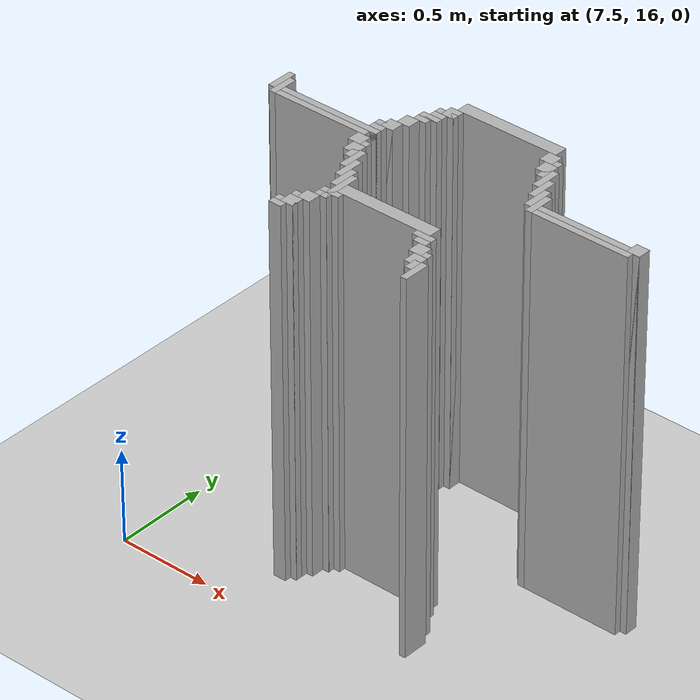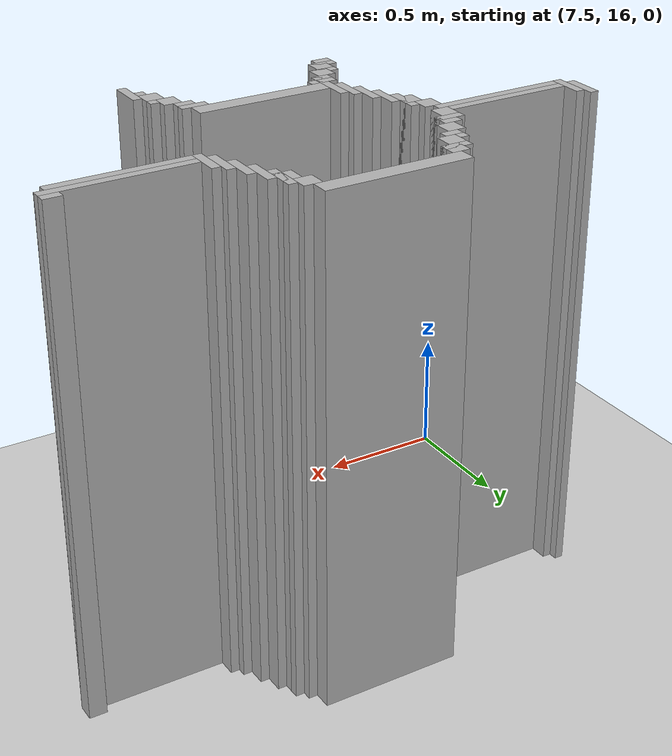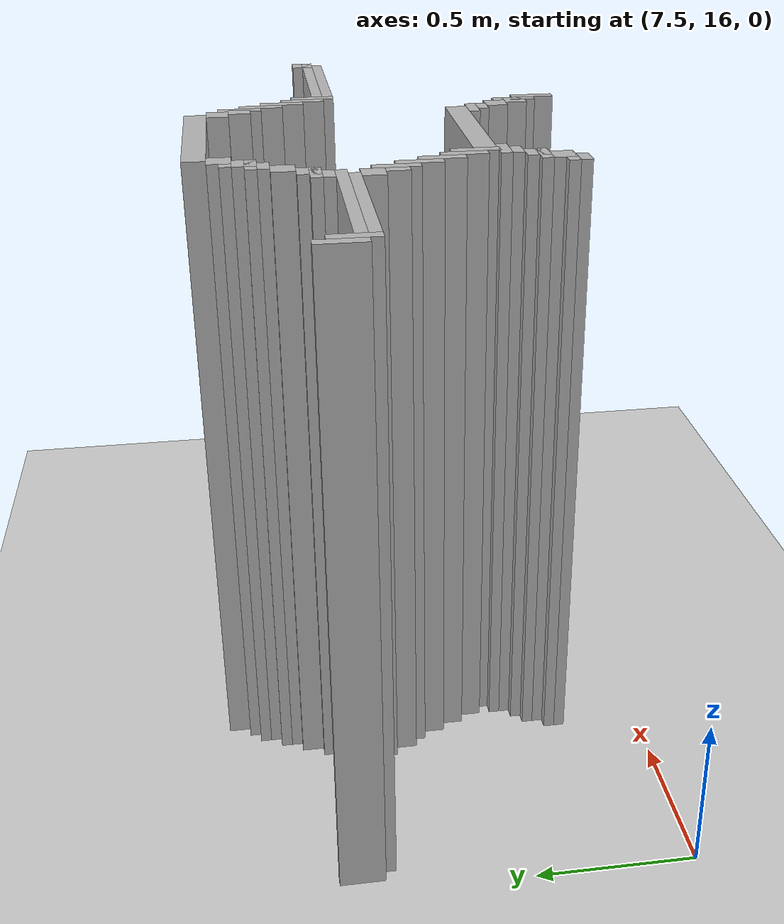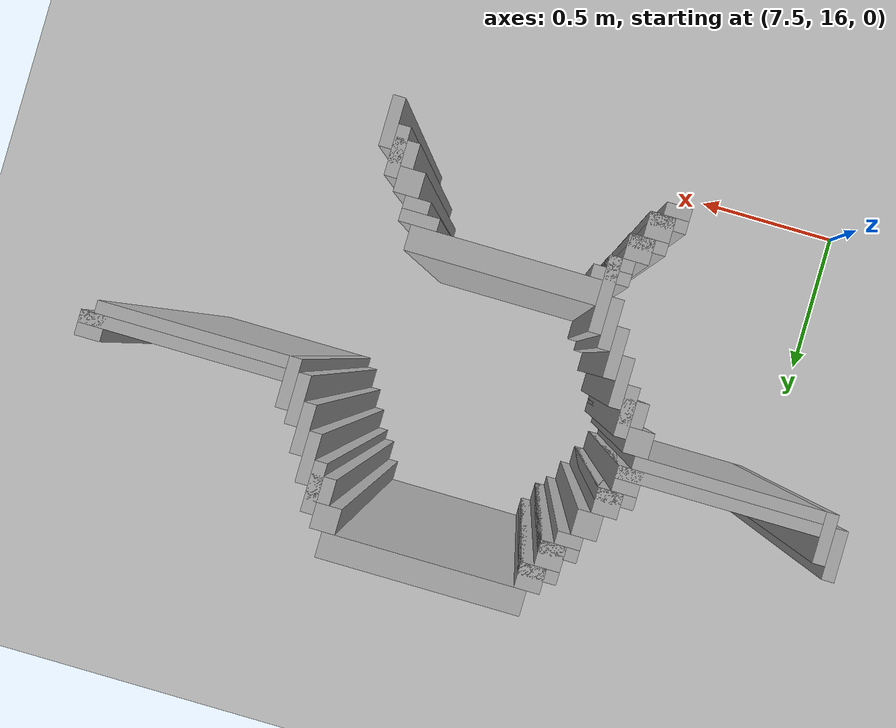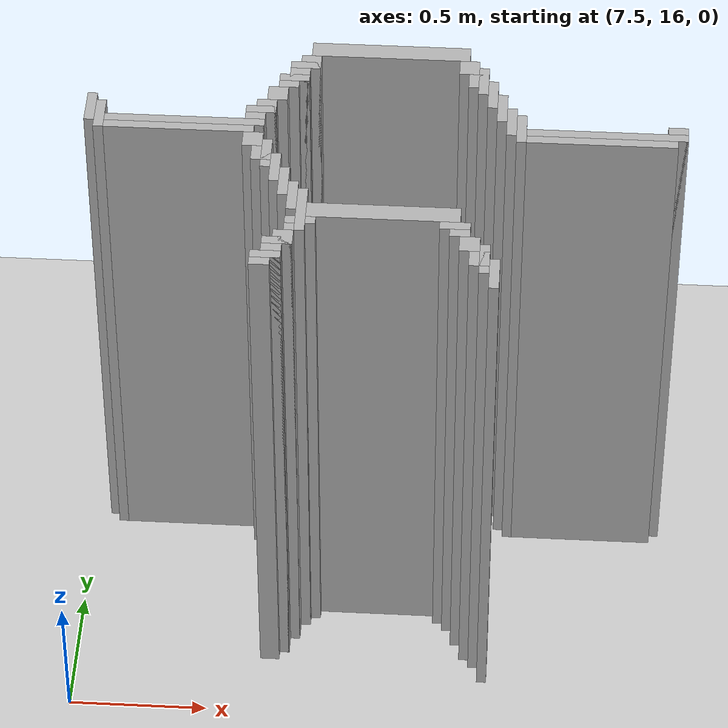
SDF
<sdf version="1.6">
 <world name="slam_world">
  <model name="ground_plane">
   <static>true</static>
   <link name="link">
    <collision name="collision">
     <geometry><plane><normal>0 0 1</normal><size>100 100</size></plane></geometry>
    </collision>
    <visual name="visual">
     <geometry><plane><normal>0 0 1</normal><size>100 100</size></plane></geometry>
     <material>
      <ambient>0.8 0.8 0.8 1</ambient>
      <diffuse>0.8 0.8 0.8 1</diffuse>
      <specular>0.8 0.8 0.8 1</specular>
     </material>
    </visual>
   </link>
  </model>
  <model name="wall_6">
   <static>true</static>
   <pose>8.596287703016241 17.366589327146173 1.0 0 0 0</pose>
   <link name="link">
    <collision name="collision">
     <geometry><box><size>0.5568445475638051 0.06960556844547564 2.0</size></box></geometry>
    </collision>
    <visual name="visual">
     <geometry><box><size>0.5568445475638051 0.06960556844547564 2.0</size></box></geometry>
     <material><ambient>0.5 0.5 0.5 1</ambient><diffuse>0.7 0.7 0.7 1</diffuse></material>
    </visual>
   </link>
  </model>
  <model name="wall_21">
   <static>true</static>
   <pose>8.317865429234338 17.296983758700694 1.0 0 0 0</pose>
   <link name="link">
    <collision name="collision">
     <geometry><box><size>0.06960556844547564 0.06960556844547564 2.0</size></box></geometry>
    </collision>
    <visual name="visual">
     <geometry><box><size>0.06960556844547564 0.06960556844547564 2.0</size></box></geometry>
     <material><ambient>0.5 0.5 0.5 1</ambient><diffuse>0.7 0.7 0.7 1</diffuse></material>
    </visual>
   </link>
  </model>
  <model name="wall_22">
   <static>true</static>
   <pose>8.874709976798144 17.296983758700694 1.0 0 0 0</pose>
   <link name="link">
    <collision name="collision">
     <geometry><box><size>0.06960556844547564 0.06960556844547564 2.0</size></box></geometry>
    </collision>
    <visual name="visual">
     <geometry><box><size>0.06960556844547564 0.06960556844547564 2.0</size></box></geometry>
     <material><ambient>0.5 0.5 0.5 1</ambient><diffuse>0.7 0.7 0.7 1</diffuse></material>
    </visual>
   </link>
  </model>
  <model name="wall_41">
   <static>true</static>
   <pose>8.30046403712297 17.279582366589327 1.0 0 0 0</pose>
   <link name="link">
    <collision name="collision">
     <geometry><box><size>0.10440835266821345 0.03480278422273782 2.0</size></box></geometry>
    </collision>
    <visual name="visual">
     <geometry><box><size>0.10440835266821345 0.03480278422273782 2.0</size></box></geometry>
     <material><ambient>0.5 0.5 0.5 1</ambient><diffuse>0.7 0.7 0.7 1</diffuse></material>
    </visual>
   </link>
  </model>
  <model name="wall_42">
   <static>true</static>
   <pose>8.92691415313225 17.22737819025522 1.0 0 0 0</pose>
   <link name="link">
    <collision name="collision">
     <geometry><box><size>0.03480278422273782 0.13921113689095127 2.0</size></box></geometry>
    </collision>
    <visual name="visual">
     <geometry><box><size>0.03480278422273782 0.13921113689095127 2.0</size></box></geometry>
     <material><ambient>0.5 0.5 0.5 1</ambient><diffuse>0.7 0.7 0.7 1</diffuse></material>
    </visual>
   </link>
  </model>
  <model name="wall_61">
   <static>true</static>
   <pose>8.2830626450116 17.22737819025522 1.0 0 0 0</pose>
   <link name="link">
    <collision name="collision">
     <geometry><box><size>0.06960556844547564 0.06960556844547564 2.0</size></box></geometry>
    </collision>
    <visual name="visual">
     <geometry><box><size>0.06960556844547564 0.06960556844547564 2.0</size></box></geometry>
     <material><ambient>0.5 0.5 0.5 1</ambient><diffuse>0.7 0.7 0.7 1</diffuse></material>
    </visual>
   </link>
  </model>
  <model name="wall_62">
   <static>true</static>
   <pose>8.909512761020881 17.22737819025522 1.0 0 0 0</pose>
   <link name="link">
    <collision name="collision">
     <geometry><box><size>0.06960556844547564 0.06960556844547564 2.0</size></box></geometry>
    </collision>
    <visual name="visual">
     <geometry><box><size>0.06960556844547564 0.06960556844547564 2.0</size></box></geometry>
     <material><ambient>0.5 0.5 0.5 1</ambient><diffuse>0.7 0.7 0.7 1</diffuse></material>
    </visual>
   </link>
  </model>
  <model name="wall_81">
   <static>true</static>
   <pose>8.265661252900232 17.209976798143853 1.0 0 0 0</pose>
   <link name="link">
    <collision name="collision">
     <geometry><box><size>0.10440835266821345 0.03480278422273782 2.0</size></box></geometry>
    </collision>
    <visual name="visual">
     <geometry><box><size>0.10440835266821345 0.03480278422273782 2.0</size></box></geometry>
     <material><ambient>0.5 0.5 0.5 1</ambient><diffuse>0.7 0.7 0.7 1</diffuse></material>
    </visual>
   </link>
  </model>
  <model name="wall_82">
   <static>true</static>
   <pose>8.961716937354987 17.157772621809745 1.0 0 0 0</pose>
   <link name="link">
    <collision name="collision">
     <geometry><box><size>0.03480278422273782 0.13921113689095127 2.0</size></box></geometry>
    </collision>
    <visual name="visual">
     <geometry><box><size>0.03480278422273782 0.13921113689095127 2.0</size></box></geometry>
     <material><ambient>0.5 0.5 0.5 1</ambient><diffuse>0.7 0.7 0.7 1</diffuse></material>
    </visual>
   </link>
  </model>
  <model name="wall_96">
   <static>true</static>
   <pose>8.248259860788863 17.17517401392111 1.0 0 0 0</pose>
   <link name="link">
    <collision name="collision">
     <geometry><box><size>0.06960556844547564 0.03480278422273782 2.0</size></box></geometry>
    </collision>
    <visual name="visual">
     <geometry><box><size>0.06960556844547564 0.03480278422273782 2.0</size></box></geometry>
     <material><ambient>0.5 0.5 0.5 1</ambient><diffuse>0.7 0.7 0.7 1</diffuse></material>
    </visual>
   </link>
  </model>
  <model name="wall_111">
   <static>true</static>
   <pose>8.213457076566124 17.122969837587007 1.0 0 0 0</pose>
   <link name="link">
    <collision name="collision">
     <geometry><box><size>0.06960556844547564 0.06960556844547564 2.0</size></box></geometry>
    </collision>
    <visual name="visual">
     <geometry><box><size>0.06960556844547564 0.06960556844547564 2.0</size></box></geometry>
     <material><ambient>0.5 0.5 0.5 1</ambient><diffuse>0.7 0.7 0.7 1</diffuse></material>
    </visual>
   </link>
  </model>
  <model name="wall_112">
   <static>true</static>
   <pose>8.996519721577727 17.08816705336427 1.0 0 0 0</pose>
   <link name="link">
    <collision name="collision">
     <geometry><box><size>0.03480278422273782 0.13921113689095127 2.0</size></box></geometry>
    </collision>
    <visual name="visual">
     <geometry><box><size>0.03480278422273782 0.13921113689095127 2.0</size></box></geometry>
     <material><ambient>0.5 0.5 0.5 1</ambient><diffuse>0.7 0.7 0.7 1</diffuse></material>
    </visual>
   </link>
  </model>
  <model name="wall_130">
   <static>true</static>
   <pose>7.569605568445476 17.01856148491879 1.0 0 0 0</pose>
   <link name="link">
    <collision name="collision">
     <geometry><box><size>0.03480278422273782 0.13921113689095127 2.0</size></box></geometry>
    </collision>
    <visual name="visual">
     <geometry><box><size>0.03480278422273782 0.13921113689095127 2.0</size></box></geometry>
     <material><ambient>0.5 0.5 0.5 1</ambient><diffuse>0.7 0.7 0.7 1</diffuse></material>
    </visual>
   </link>
  </model>
  <model name="wall_131">
   <static>true</static>
   <pose>8.178654292343387 17.053364269141532 1.0 0 0 0</pose>
   <link name="link">
    <collision name="collision">
     <geometry><box><size>0.06960556844547564 0.06960556844547564 2.0</size></box></geometry>
    </collision>
    <visual name="visual">
     <geometry><box><size>0.06960556844547564 0.06960556844547564 2.0</size></box></geometry>
     <material><ambient>0.5 0.5 0.5 1</ambient><diffuse>0.7 0.7 0.7 1</diffuse></material>
    </visual>
   </link>
  </model>
  <model name="wall_132">
   <static>true</static>
   <pose>9.031322505800464 17.01856148491879 1.0 0 0 0</pose>
   <link name="link">
    <collision name="collision">
     <geometry><box><size>0.03480278422273782 0.13921113689095127 2.0</size></box></geometry>
    </collision>
    <visual name="visual">
     <geometry><box><size>0.03480278422273782 0.13921113689095127 2.0</size></box></geometry>
     <material><ambient>0.5 0.5 0.5 1</ambient><diffuse>0.7 0.7 0.7 1</diffuse></material>
    </visual>
   </link>
  </model>
  <model name="wall_150">
   <static>true</static>
   <pose>7.604408352668213 16.983758700696054 1.0 0 0 0</pose>
   <link name="link">
    <collision name="collision">
     <geometry><box><size>0.03480278422273782 0.13921113689095127 2.0</size></box></geometry>
    </collision>
    <visual name="visual">
     <geometry><box><size>0.03480278422273782 0.13921113689095127 2.0</size></box></geometry>
     <material><ambient>0.5 0.5 0.5 1</ambient><diffuse>0.7 0.7 0.7 1</diffuse></material>
    </visual>
   </link>
  </model>
  <model name="wall_151">
   <static>true</static>
   <pose>8.161252900232018 17.035962877030162 1.0 0 0 0</pose>
   <link name="link">
    <collision name="collision">
     <geometry><box><size>0.10440835266821345 0.03480278422273782 2.0</size></box></geometry>
    </collision>
    <visual name="visual">
     <geometry><box><size>0.10440835266821345 0.03480278422273782 2.0</size></box></geometry>
     <material><ambient>0.5 0.5 0.5 1</ambient><diffuse>0.7 0.7 0.7 1</diffuse></material>
    </visual>
   </link>
  </model>
  <model name="wall_152">
   <static>true</static>
   <pose>9.066125290023201 16.983758700696054 1.0 0 0 0</pose>
   <link name="link">
    <collision name="collision">
     <geometry><box><size>0.03480278422273782 0.13921113689095127 2.0</size></box></geometry>
    </collision>
    <visual name="visual">
     <geometry><box><size>0.03480278422273782 0.13921113689095127 2.0</size></box></geometry>
     <material><ambient>0.5 0.5 0.5 1</ambient><diffuse>0.7 0.7 0.7 1</diffuse></material>
    </visual>
   </link>
  </model>
  <model name="wall_166">
   <static>true</static>
   <pose>8.14385150812065 16.983758700696054 1.0 0 0 0</pose>
   <link name="link">
    <collision name="collision">
     <geometry><box><size>0.06960556844547564 0.06960556844547564 2.0</size></box></geometry>
    </collision>
    <visual name="visual">
     <geometry><box><size>0.06960556844547564 0.06960556844547564 2.0</size></box></geometry>
     <material><ambient>0.5 0.5 0.5 1</ambient><diffuse>0.7 0.7 0.7 1</diffuse></material>
    </visual>
   </link>
  </model>
  <model name="wall_167">
   <static>true</static>
   <pose>9.605568445475638 16.983758700696054 1.0 0 0 0</pose>
   <link name="link">
    <collision name="collision">
     <geometry><box><size>0.06960556844547564 0.06960556844547564 2.0</size></box></geometry>
    </collision>
    <visual name="visual">
     <geometry><box><size>0.06960556844547564 0.06960556844547564 2.0</size></box></geometry>
     <material><ambient>0.5 0.5 0.5 1</ambient><diffuse>0.7 0.7 0.7 1</diffuse></material>
    </visual>
   </link>
  </model>
  <model name="wall_176">
   <static>true</static>
   <pose>7.900232018561485 16.966357308584687 1.0 0 0 0</pose>
   <link name="link">
    <collision name="collision">
     <geometry><box><size>0.5568445475638051 0.03480278422273782 2.0</size></box></geometry>
    </collision>
    <visual name="visual">
     <geometry><box><size>0.5568445475638051 0.03480278422273782 2.0</size></box></geometry>
     <material><ambient>0.5 0.5 0.5 1</ambient><diffuse>0.7 0.7 0.7 1</diffuse></material>
    </visual>
   </link>
  </model>
  <model name="wall_177">
   <static>true</static>
   <pose>9.361948955916473 16.966357308584687 1.0 0 0 0</pose>
   <link name="link">
    <collision name="collision">
     <geometry><box><size>0.5568445475638051 0.03480278422273782 2.0</size></box></geometry>
    </collision>
    <visual name="visual">
     <geometry><box><size>0.5568445475638051 0.03480278422273782 2.0</size></box></geometry>
     <material><ambient>0.5 0.5 0.5 1</ambient><diffuse>0.7 0.7 0.7 1</diffuse></material>
    </visual>
   </link>
  </model>
  <model name="wall_187">
   <static>true</static>
   <pose>7.882830626450116 16.93155452436195 1.0 0 0 0</pose>
   <link name="link">
    <collision name="collision">
     <geometry><box><size>0.5220417633410672 0.03480278422273782 2.0</size></box></geometry>
    </collision>
    <visual name="visual">
     <geometry><box><size>0.5220417633410672 0.03480278422273782 2.0</size></box></geometry>
     <material><ambient>0.5 0.5 0.5 1</ambient><diffuse>0.7 0.7 0.7 1</diffuse></material>
    </visual>
   </link>
  </model>
  <model name="wall_188">
   <static>true</static>
   <pose>9.344547563805104 16.93155452436195 1.0 0 0 0</pose>
   <link name="link">
    <collision name="collision">
     <geometry><box><size>0.5220417633410672 0.03480278422273782 2.0</size></box></geometry>
    </collision>
    <visual name="visual">
     <geometry><box><size>0.5220417633410672 0.03480278422273782 2.0</size></box></geometry>
     <material><ambient>0.5 0.5 0.5 1</ambient><diffuse>0.7 0.7 0.7 1</diffuse></material>
    </visual>
   </link>
  </model>
  <model name="wall_197">
   <static>true</static>
   <pose>8.14385150812065 16.87935034802784 1.0 0 0 0</pose>
   <link name="link">
    <collision name="collision">
     <geometry><box><size>0.06960556844547564 0.06960556844547564 2.0</size></box></geometry>
    </collision>
    <visual name="visual">
     <geometry><box><size>0.06960556844547564 0.06960556844547564 2.0</size></box></geometry>
     <material><ambient>0.5 0.5 0.5 1</ambient><diffuse>0.7 0.7 0.7 1</diffuse></material>
    </visual>
   </link>
  </model>
  <model name="wall_206">
   <static>true</static>
   <pose>8.196055684454755 16.809744779582367 1.0 0 0 0</pose>
   <link name="link">
    <collision name="collision">
     <geometry><box><size>0.03480278422273782 0.13921113689095127 2.0</size></box></geometry>
    </collision>
    <visual name="visual">
     <geometry><box><size>0.03480278422273782 0.13921113689095127 2.0</size></box></geometry>
     <material><ambient>0.5 0.5 0.5 1</ambient><diffuse>0.7 0.7 0.7 1</diffuse></material>
    </visual>
   </link>
  </model>
  <model name="wall_215">
   <static>true</static>
   <pose>8.178654292343387 16.809744779582367 1.0 0 0 0</pose>
   <link name="link">
    <collision name="collision">
     <geometry><box><size>0.06960556844547564 0.06960556844547564 2.0</size></box></geometry>
    </collision>
    <visual name="visual">
     <geometry><box><size>0.06960556844547564 0.06960556844547564 2.0</size></box></geometry>
     <material><ambient>0.5 0.5 0.5 1</ambient><diffuse>0.7 0.7 0.7 1</diffuse></material>
    </visual>
   </link>
  </model>
  <model name="wall_224">
   <static>true</static>
   <pose>8.230858468677495 16.74013921113689 1.0 0 0 0</pose>
   <link name="link">
    <collision name="collision">
     <geometry><box><size>0.03480278422273782 0.13921113689095127 2.0</size></box></geometry>
    </collision>
    <visual name="visual">
     <geometry><box><size>0.03480278422273782 0.13921113689095127 2.0</size></box></geometry>
     <material><ambient>0.5 0.5 0.5 1</ambient><diffuse>0.7 0.7 0.7 1</diffuse></material>
    </visual>
   </link>
  </model>
  <model name="wall_237">
   <static>true</static>
   <pose>8.265661252900232 16.670533642691414 1.0 0 0 0</pose>
   <link name="link">
    <collision name="collision">
     <geometry><box><size>0.03480278422273782 0.13921113689095127 2.0</size></box></geometry>
    </collision>
    <visual name="visual">
     <geometry><box><size>0.03480278422273782 0.13921113689095127 2.0</size></box></geometry>
     <material><ambient>0.5 0.5 0.5 1</ambient><diffuse>0.7 0.7 0.7 1</diffuse></material>
    </visual>
   </link>
  </model>
  <model name="wall_246">
   <static>true</static>
   <pose>8.30046403712297 16.60092807424594 1.0 0 0 0</pose>
   <link name="link">
    <collision name="collision">
     <geometry><box><size>0.03480278422273782 0.13921113689095127 2.0</size></box></geometry>
    </collision>
    <visual name="visual">
     <geometry><box><size>0.03480278422273782 0.13921113689095127 2.0</size></box></geometry>
     <material><ambient>0.5 0.5 0.5 1</ambient><diffuse>0.7 0.7 0.7 1</diffuse></material>
    </visual>
   </link>
  </model>
  <model name="wall_255">
   <static>true</static>
   <pose>8.335266821345707 16.531322505800464 1.0 0 0 0</pose>
   <link name="link">
    <collision name="collision">
     <geometry><box><size>0.03480278422273782 0.2088167053364269 2.0</size></box></geometry>
    </collision>
    <visual name="visual">
     <geometry><box><size>0.03480278422273782 0.2088167053364269 2.0</size></box></geometry>
     <material><ambient>0.5 0.5 0.5 1</ambient><diffuse>0.7 0.7 0.7 1</diffuse></material>
    </visual>
   </link>
  </model>
  <model name="wall_270">
   <static>true</static>
   <pose>8.61368909512761 16.531322505800464 1.0 0 0 0</pose>
   <link name="link">
    <collision name="collision">
     <geometry><box><size>0.5220417633410672 0.06960556844547564 2.0</size></box></geometry>
    </collision>
    <visual name="visual">
     <geometry><box><size>0.5220417633410672 0.06960556844547564 2.0</size></box></geometry>
     <material><ambient>0.5 0.5 0.5 1</ambient><diffuse>0.7 0.7 0.7 1</diffuse></material>
    </visual>
   </link>
  </model>
  <model name="wall_287">
   <static>true</static>
   <pose>8.335266821345707 16.479118329466356 1.0 0 0 0</pose>
   <link name="link">
    <collision name="collision">
     <geometry><box><size>0.10440835266821345 0.03480278422273782 2.0</size></box></geometry>
    </collision>
    <visual name="visual">
     <geometry><box><size>0.10440835266821345 0.03480278422273782 2.0</size></box></geometry>
     <material><ambient>0.5 0.5 0.5 1</ambient><diffuse>0.7 0.7 0.7 1</diffuse></material>
    </visual>
   </link>
  </model>
  <model name="wall_288">
   <static>true</static>
   <pose>8.857308584686775 16.479118329466356 1.0 0 0 0</pose>
   <link name="link">
    <collision name="collision">
     <geometry><box><size>0.10440835266821345 0.03480278422273782 2.0</size></box></geometry>
    </collision>
    <visual name="visual">
     <geometry><box><size>0.10440835266821345 0.03480278422273782 2.0</size></box></geometry>
     <material><ambient>0.5 0.5 0.5 1</ambient><diffuse>0.7 0.7 0.7 1</diffuse></material>
    </visual>
   </link>
  </model>
  <model name="wall_298">
   <static>true</static>
   <pose>8.317865429234338 16.44431554524362 1.0 0 0 0</pose>
   <link name="link">
    <collision name="collision">
     <geometry><box><size>0.06960556844547564 0.03480278422273782 2.0</size></box></geometry>
    </collision>
    <visual name="visual">
     <geometry><box><size>0.06960556844547564 0.03480278422273782 2.0</size></box></geometry>
     <material><ambient>0.5 0.5 0.5 1</ambient><diffuse>0.7 0.7 0.7 1</diffuse></material>
    </visual>
   </link>
  </model>
  <model name="wall_299">
   <static>true</static>
   <pose>8.874709976798144 16.44431554524362 1.0 0 0 0</pose>
   <link name="link">
    <collision name="collision">
     <geometry><box><size>0.06960556844547564 0.03480278422273782 2.0</size></box></geometry>
    </collision>
    <visual name="visual">
     <geometry><box><size>0.06960556844547564 0.03480278422273782 2.0</size></box></geometry>
     <material><ambient>0.5 0.5 0.5 1</ambient><diffuse>0.7 0.7 0.7 1</diffuse></material>
    </visual>
   </link>
  </model>
  <model name="wall_310">
   <static>true</static>
   <pose>8.2830626450116 16.39211136890951 1.0 0 0 0</pose>
   <link name="link">
    <collision name="collision">
     <geometry><box><size>0.06960556844547564 0.06960556844547564 2.0</size></box></geometry>
    </collision>
    <visual name="visual">
     <geometry><box><size>0.06960556844547564 0.06960556844547564 2.0</size></box></geometry>
     <material><ambient>0.5 0.5 0.5 1</ambient><diffuse>0.7 0.7 0.7 1</diffuse></material>
    </visual>
   </link>
  </model>
  <model name="wall_311">
   <static>true</static>
   <pose>8.909512761020881 16.39211136890951 1.0 0 0 0</pose>
   <link name="link">
    <collision name="collision">
     <geometry><box><size>0.06960556844547564 0.06960556844547564 2.0</size></box></geometry>
    </collision>
    <visual name="visual">
     <geometry><box><size>0.06960556844547564 0.06960556844547564 2.0</size></box></geometry>
     <material><ambient>0.5 0.5 0.5 1</ambient><diffuse>0.7 0.7 0.7 1</diffuse></material>
    </visual>
   </link>
  </model>
  <model name="wall_324">
   <static>true</static>
   <pose>8.265661252900232 16.374709976798144 1.0 0 0 0</pose>
   <link name="link">
    <collision name="collision">
     <geometry><box><size>0.10440835266821345 0.03480278422273782 2.0</size></box></geometry>
    </collision>
    <visual name="visual">
     <geometry><box><size>0.10440835266821345 0.03480278422273782 2.0</size></box></geometry>
     <material><ambient>0.5 0.5 0.5 1</ambient><diffuse>0.7 0.7 0.7 1</diffuse></material>
    </visual>
   </link>
  </model>
  <model name="wall_325">
   <static>true</static>
   <pose>8.961716937354987 16.322505800464036 1.0 0 0 0</pose>
   <link name="link">
    <collision name="collision">
     <geometry><box><size>0.03480278422273782 0.13921113689095127 2.0</size></box></geometry>
    </collision>
    <visual name="visual">
     <geometry><box><size>0.03480278422273782 0.13921113689095127 2.0</size></box></geometry>
     <material><ambient>0.5 0.5 0.5 1</ambient><diffuse>0.7 0.7 0.7 1</diffuse></material>
    </visual>
   </link>
  </model>
  <model name="wall_338">
   <static>true</static>
   <pose>8.248259860788863 16.322505800464036 1.0 0 0 0</pose>
   <link name="link">
    <collision name="collision">
     <geometry><box><size>0.06960556844547564 0.06960556844547564 2.0</size></box></geometry>
    </collision>
    <visual name="visual">
     <geometry><box><size>0.06960556844547564 0.06960556844547564 2.0</size></box></geometry>
     <material><ambient>0.5 0.5 0.5 1</ambient><diffuse>0.7 0.7 0.7 1</diffuse></material>
    </visual>
   </link>
  </model>
  <model name="wall_339">
   <static>true</static>
   <pose>8.944315545243619 16.322505800464036 1.0 0 0 0</pose>
   <link name="link">
    <collision name="collision">
     <geometry><box><size>0.06960556844547564 0.06960556844547564 2.0</size></box></geometry>
    </collision>
    <visual name="visual">
     <geometry><box><size>0.06960556844547564 0.06960556844547564 2.0</size></box></geometry>
     <material><ambient>0.5 0.5 0.5 1</ambient><diffuse>0.7 0.7 0.7 1</diffuse></material>
    </visual>
   </link>
  </model>
  <model name="wall_352">
   <static>true</static>
   <pose>8.230858468677495 16.30510440835267 1.0 0 0 0</pose>
   <link name="link">
    <collision name="collision">
     <geometry><box><size>0.10440835266821345 0.03480278422273782 2.0</size></box></geometry>
    </collision>
    <visual name="visual">
     <geometry><box><size>0.10440835266821345 0.03480278422273782 2.0</size></box></geometry>
     <material><ambient>0.5 0.5 0.5 1</ambient><diffuse>0.7 0.7 0.7 1</diffuse></material>
    </visual>
   </link>
  </model>
  <model name="wall_353">
   <static>true</static>
   <pose>8.996519721577727 16.25290023201856 1.0 0 0 0</pose>
   <link name="link">
    <collision name="collision">
     <geometry><box><size>0.03480278422273782 0.13921113689095127 2.0</size></box></geometry>
    </collision>
    <visual name="visual">
     <geometry><box><size>0.03480278422273782 0.13921113689095127 2.0</size></box></geometry>
     <material><ambient>0.5 0.5 0.5 1</ambient><diffuse>0.7 0.7 0.7 1</diffuse></material>
    </visual>
   </link>
  </model>
  <model name="wall_363">
   <static>true</static>
   <pose>8.213457076566124 16.270301624129928 1.0 0 0 0</pose>
   <link name="link">
    <collision name="collision">
     <geometry><box><size>0.06960556844547564 0.03480278422273782 2.0</size></box></geometry>
    </collision>
    <visual name="visual">
     <geometry><box><size>0.06960556844547564 0.03480278422273782 2.0</size></box></geometry>
     <material><ambient>0.5 0.5 0.5 1</ambient><diffuse>0.7 0.7 0.7 1</diffuse></material>
    </visual>
   </link>
  </model>
 </world>
</sdf>
